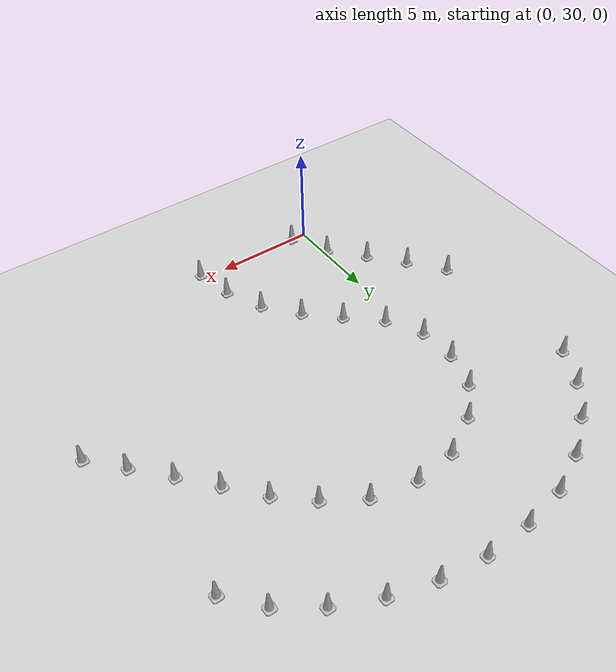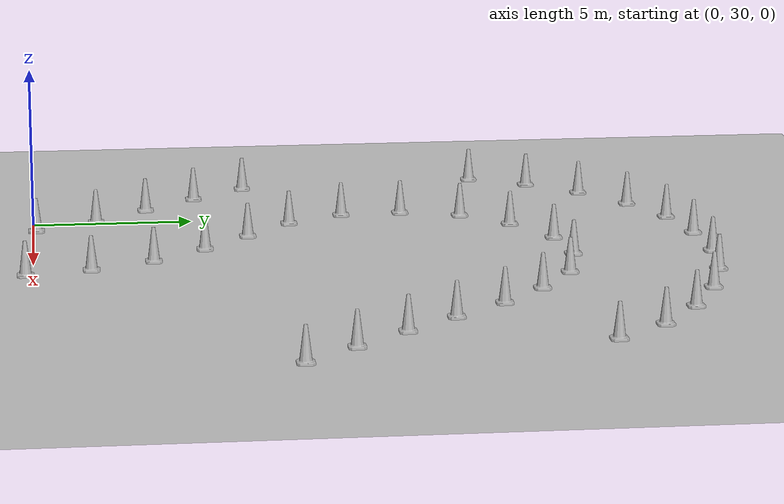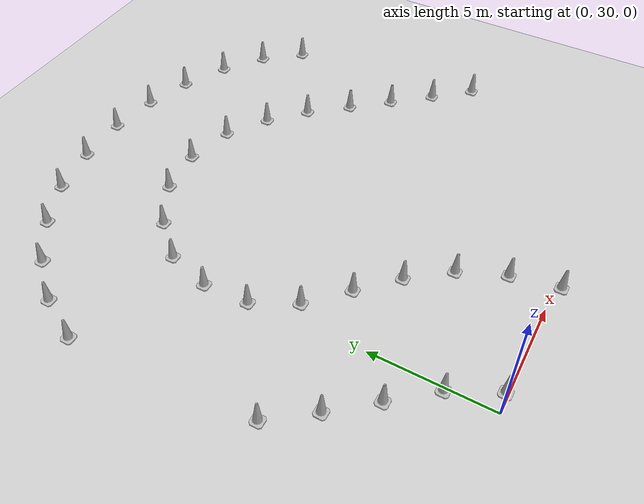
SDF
<sdf version="1.7">
 <world name="default">
  <model name="ground_plane">
   <static>1</static>
   <link name="link">
    <collision name="collision">
     <geometry><plane><normal>0 0 1</normal><size>125 125</size></plane></geometry>
     <surface>
      <contact><collide_bitmask>65535</collide_bitmask></contact>
      <friction><ode><mu>100</mu><mu2>50</mu2></ode></friction>
     </surface>
    </collision>
    <visual name="visual">
     <cast_shadows>0</cast_shadows>
     <geometry><plane><normal>0 0 1</normal><size>125 125</size></plane></geometry>
     <material>
      <script><uri>file://media/materials/scripts/gazebo.material</uri><name>Gazebo/Grey</name></script>
     </material>
    </visual>
   </link>
  </model>
  <model name="Construction Cone 0">
   <link name="link">
    <collision name="collision">
     <geometry>
      <mesh><scale>10 10 10</scale><uri>model://construction_cone/meshes/construction_cone.dae</uri></mesh>
     </geometry>
    </collision>
    <visual name="visual">
     <geometry>
      <mesh><scale>10 10 10</scale><uri>model://construction_cone/meshes/construction_cone.dae</uri></mesh>
     </geometry>
    </visual>
    <inertial>
     <inertia><ixx>1</ixx><ixy>0</ixy><ixz>0</ixz><iyy>1</iyy><iyz>0</iyz><izz>1</izz></inertia>
     <mass>1</mass>
    </inertial>
   </link>
   <pose>5.576248381191256 50.64985582765605 0 0 0 0</pose>
  </model>
  <model name="Construction Cone 1">
   <link name="link">
    <collision name="collision">
     <geometry>
      <mesh><scale>10 10 10</scale><uri>model://construction_cone/meshes/construction_cone.dae</uri></mesh>
     </geometry>
    </collision>
    <visual name="visual">
     <geometry>
      <mesh><scale>10 10 10</scale><uri>model://construction_cone/meshes/construction_cone.dae</uri></mesh>
     </geometry>
    </visual>
    <inertial>
     <inertia><ixx>1</ixx><ixy>0</ixy><ixz>0</ixz><iyy>1</iyy><iyz>0</iyz><izz>1</izz></inertia>
     <mass>1</mass>
    </inertial>
   </link>
   <pose>3.294748381191262 50.55535582765605 0 0 0 0</pose>
  </model>
  <model name="Construction Cone 2">
   <link name="link">
    <collision name="collision">
     <geometry>
      <mesh><scale>10 10 10</scale><uri>model://construction_cone/meshes/construction_cone.dae</uri></mesh>
     </geometry>
    </collision>
    <visual name="visual">
     <geometry>
      <mesh><scale>10 10 10</scale><uri>model://construction_cone/meshes/construction_cone.dae</uri></mesh>
     </geometry>
    </visual>
    <inertial>
     <inertia><ixx>1</ixx><ixy>0</ixy><ixz>0</ixz><iyy>1</iyy><iyz>0</iyz><izz>1</izz></inertia>
     <mass>1</mass>
    </inertial>
   </link>
   <pose>7.749748381191267 50.35285582765605 0 0 0 0</pose>
  </model>
  <model name="Construction Cone 3">
   <link name="link">
    <collision name="collision">
     <geometry>
      <mesh><scale>10 10 10</scale><uri>model://construction_cone/meshes/construction_cone.dae</uri></mesh>
     </geometry>
    </collision>
    <visual name="visual">
     <geometry>
      <mesh><scale>10 10 10</scale><uri>model://construction_cone/meshes/construction_cone.dae</uri></mesh>
     </geometry>
    </visual>
    <inertial>
     <inertia><ixx>1</ixx><ixy>0</ixy><ixz>0</ixz><iyy>1</iyy><iyz>0</iyz><izz>1</izz></inertia>
     <mass>1</mass>
    </inertial>
   </link>
   <pose>1.1347483811912582 50.15035582765605 0 0 0 0</pose>
  </model>
  <model name="Construction Cone 4">
   <link name="link">
    <collision name="collision">
     <geometry>
      <mesh><scale>10 10 10</scale><uri>model://construction_cone/meshes/construction_cone.dae</uri></mesh>
     </geometry>
    </collision>
    <visual name="visual">
     <geometry>
      <mesh><scale>10 10 10</scale><uri>model://construction_cone/meshes/construction_cone.dae</uri></mesh>
     </geometry>
    </visual>
    <inertial>
     <inertia><ixx>1</ixx><ixy>0</ixy><ixz>0</ixz><iyy>1</iyy><iyz>0</iyz><izz>1</izz></inertia>
     <mass>1</mass>
    </inertial>
   </link>
   <pose>9.815248381191267 49.73185582765605 0 0 0 0</pose>
  </model>
  <model name="Construction Cone 5">
   <link name="link">
    <collision name="collision">
     <geometry>
      <mesh><scale>10 10 10</scale><uri>model://construction_cone/meshes/construction_cone.dae</uri></mesh>
     </geometry>
    </collision>
    <visual name="visual">
     <geometry>
      <mesh><scale>10 10 10</scale><uri>model://construction_cone/meshes/construction_cone.dae</uri></mesh>
     </geometry>
    </visual>
    <inertial>
     <inertia><ixx>1</ixx><ixy>0</ixy><ixz>0</ixz><iyy>1</iyy><iyz>0</iyz><izz>1</izz></inertia>
     <mass>1</mass>
    </inertial>
   </link>
   <pose>-0.7687516188087429 49.24585582765605 0 0 0 0</pose>
  </model>
  <model name="Construction Cone 6">
   <link name="link">
    <collision name="collision">
     <geometry>
      <mesh><scale>10 10 10</scale><uri>model://construction_cone/meshes/construction_cone.dae</uri></mesh>
     </geometry>
    </collision>
    <visual name="visual">
     <geometry>
      <mesh><scale>10 10 10</scale><uri>model://construction_cone/meshes/construction_cone.dae</uri></mesh>
     </geometry>
    </visual>
    <inertial>
     <inertia><ixx>1</ixx><ixy>0</ixy><ixz>0</ixz><iyy>1</iyy><iyz>0</iyz><izz>1</izz></inertia>
     <mass>1</mass>
    </inertial>
   </link>
   <pose>11.809391238334115 48.771427256227476 0 0 0 0</pose>
  </model>
  <model name="Construction Cone 7">
   <link name="link">
    <collision name="collision">
     <geometry>
      <mesh><scale>10 10 10</scale><uri>model://construction_cone/meshes/construction_cone.dae</uri></mesh>
     </geometry>
    </collision>
    <visual name="visual">
     <geometry>
      <mesh><scale>10 10 10</scale><uri>model://construction_cone/meshes/construction_cone.dae</uri></mesh>
     </geometry>
    </visual>
    <inertial>
     <inertia><ixx>1</ixx><ixy>0</ixy><ixz>0</ixz><iyy>1</iyy><iyz>0</iyz><izz>1</izz></inertia>
     <mass>1</mass>
    </inertial>
   </link>
   <pose>-2.4967516188087373 47.94985582765605 0 0 0 0</pose>
  </model>
  <model name="Construction Cone 8">
   <link name="link">
    <collision name="collision">
     <geometry>
      <mesh><scale>10 10 10</scale><uri>model://construction_cone/meshes/construction_cone.dae</uri></mesh>
     </geometry>
    </collision>
    <visual name="visual">
     <geometry>
      <mesh><scale>10 10 10</scale><uri>model://construction_cone/meshes/construction_cone.dae</uri></mesh>
     </geometry>
    </visual>
    <inertial>
     <inertia><ixx>1</ixx><ixy>0</ixy><ixz>0</ixz><iyy>1</iyy><iyz>0</iyz><izz>1</izz></inertia>
     <mass>1</mass>
    </inertial>
   </link>
   <pose>13.55474838119126 47.51785582765605 0 0 0 0</pose>
  </model>
  <model name="Construction Cone 9">
   <link name="link">
    <collision name="collision">
     <geometry>
      <mesh><scale>10 10 10</scale><uri>model://construction_cone/meshes/construction_cone.dae</uri></mesh>
     </geometry>
    </collision>
    <visual name="visual">
     <geometry>
      <mesh><scale>10 10 10</scale><uri>model://construction_cone/meshes/construction_cone.dae</uri></mesh>
     </geometry>
    </visual>
    <inertial>
     <inertia><ixx>1</ixx><ixy>0</ixy><ixz>0</ixz><iyy>1</iyy><iyz>0</iyz><izz>1</izz></inertia>
     <mass>1</mass>
    </inertial>
   </link>
   <pose>-3.8467516188087387 46.41085582765605 0 0 0 0</pose>
  </model>
  <model name="Construction Cone 10">
   <link name="link">
    <collision name="collision">
     <geometry>
      <mesh><scale>10 10 10</scale><uri>model://construction_cone/meshes/construction_cone.dae</uri></mesh>
     </geometry>
    </collision>
    <visual name="visual">
     <geometry>
      <mesh><scale>10 10 10</scale><uri>model://construction_cone/meshes/construction_cone.dae</uri></mesh>
     </geometry>
    </visual>
    <inertial>
     <inertia><ixx>1</ixx><ixy>0</ixy><ixz>0</ixz><iyy>1</iyy><iyz>0</iyz><izz>1</izz></inertia>
     <mass>1</mass>
    </inertial>
   </link>
   <pose>5.49524838119126 46.35685582765605 0 0 0 0</pose>
  </model>
  <model name="Construction Cone 11">
   <link name="link">
    <collision name="collision">
     <geometry>
      <mesh><scale>10 10 10</scale><uri>model://construction_cone/meshes/construction_cone.dae</uri></mesh>
     </geometry>
    </collision>
    <visual name="visual">
     <geometry>
      <mesh><scale>10 10 10</scale><uri>model://construction_cone/meshes/construction_cone.dae</uri></mesh>
     </geometry>
    </visual>
    <inertial>
     <inertia><ixx>1</ixx><ixy>0</ixy><ixz>0</ixz><iyy>1</iyy><iyz>0</iyz><izz>1</izz></inertia>
     <mass>1</mass>
    </inertial>
   </link>
   <pose>3.42974838119126 46.10035582765605 0 0 0 0</pose>
  </model>
  <model name="Construction Cone 12">
   <link name="link">
    <collision name="collision">
     <geometry>
      <mesh><scale>10 10 10</scale><uri>model://construction_cone/meshes/construction_cone.dae</uri></mesh>
     </geometry>
    </collision>
    <visual name="visual">
     <geometry>
      <mesh><scale>10 10 10</scale><uri>model://construction_cone/meshes/construction_cone.dae</uri></mesh>
     </geometry>
    </visual>
    <inertial>
     <inertia><ixx>1</ixx><ixy>0</ixy><ixz>0</ixz><iyy>1</iyy><iyz>0</iyz><izz>1</izz></inertia>
     <mass>1</mass>
    </inertial>
   </link>
   <pose>7.62824838119127 45.87085582765605 0 0 0 0</pose>
  </model>
  <model name="Construction Cone 13">
   <link name="link">
    <collision name="collision">
     <geometry>
      <mesh><scale>10 10 10</scale><uri>model://construction_cone/meshes/construction_cone.dae</uri></mesh>
     </geometry>
    </collision>
    <visual name="visual">
     <geometry>
      <mesh><scale>10 10 10</scale><uri>model://construction_cone/meshes/construction_cone.dae</uri></mesh>
     </geometry>
    </visual>
    <inertial>
     <inertia><ixx>1</ixx><ixy>0</ixy><ixz>0</ixz><iyy>1</iyy><iyz>0</iyz><izz>1</izz></inertia>
     <mass>1</mass>
    </inertial>
   </link>
   <pose>14.88224838119126 45.94285582765605 0 0 0 0</pose>
  </model>
  <model name="Construction Cone 14">
   <link name="link">
    <collision name="collision">
     <geometry>
      <mesh><scale>10 10 10</scale><uri>model://construction_cone/meshes/construction_cone.dae</uri></mesh>
     </geometry>
    </collision>
    <visual name="visual">
     <geometry>
      <mesh><scale>10 10 10</scale><uri>model://construction_cone/meshes/construction_cone.dae</uri></mesh>
     </geometry>
    </visual>
    <inertial>
     <inertia><ixx>1</ixx><ixy>0</ixy><ixz>0</ixz><iyy>1</iyy><iyz>0</iyz><izz>1</izz></inertia>
     <mass>1</mass>
    </inertial>
   </link>
   <pose>1.5397483811912593 45.02035582765605 0 0 0 0</pose>
  </model>
  <model name="Construction Cone 15">
   <link name="link">
    <collision name="collision">
     <geometry>
      <mesh><scale>10 10 10</scale><uri>model://construction_cone/meshes/construction_cone.dae</uri></mesh>
     </geometry>
    </collision>
    <visual name="visual">
     <geometry>
      <mesh><scale>10 10 10</scale><uri>model://construction_cone/meshes/construction_cone.dae</uri></mesh>
     </geometry>
    </visual>
    <inertial>
     <inertia><ixx>1</ixx><ixy>0</ixy><ixz>0</ixz><iyy>1</iyy><iyz>0</iyz><izz>1</izz></inertia>
     <mass>1</mass>
    </inertial>
   </link>
   <pose>9.369748381191258 44.75035582765605 0 0 0 0</pose>
  </model>
  <model name="Construction Cone 16">
   <link name="link">
    <collision name="collision">
     <geometry>
      <mesh><scale>10 10 10</scale><uri>model://construction_cone/meshes/construction_cone.dae</uri></mesh>
     </geometry>
    </collision>
    <visual name="visual">
     <geometry>
      <mesh><scale>10 10 10</scale><uri>model://construction_cone/meshes/construction_cone.dae</uri></mesh>
     </geometry>
    </visual>
    <inertial>
     <inertia><ixx>1</ixx><ixy>0</ixy><ixz>0</ixz><iyy>1</iyy><iyz>0</iyz><izz>1</izz></inertia>
     <mass>1</mass>
    </inertial>
   </link>
   <pose>-4.8052516188087395 44.61535582765605 0 0 0 0</pose>
  </model>
  <model name="Construction Cone 18">
   <link name="link">
    <collision name="collision">
     <geometry>
      <mesh><scale>10 10 10</scale><uri>model://construction_cone/meshes/construction_cone.dae</uri></mesh>
     </geometry>
    </collision>
    <visual name="visual">
     <geometry>
      <mesh><scale>10 10 10</scale><uri>model://construction_cone/meshes/construction_cone.dae</uri></mesh>
     </geometry>
    </visual>
    <inertial>
     <inertia><ixx>1</ixx><ixy>0</ixy><ixz>0</ixz><iyy>1</iyy><iyz>0</iyz><izz>1</izz></inertia>
     <mass>1</mass>
    </inertial>
   </link>
   <pose>0.22349838119126275 43.60285582765605 0 0 0 0</pose>
  </model>
  <model name="Construction Cone 19">
   <link name="link">
    <collision name="collision">
     <geometry>
      <mesh><scale>10 10 10</scale><uri>model://construction_cone/meshes/construction_cone.dae</uri></mesh>
     </geometry>
    </collision>
    <visual name="visual">
     <geometry>
      <mesh><scale>10 10 10</scale><uri>model://construction_cone/meshes/construction_cone.dae</uri></mesh>
     </geometry>
    </visual>
    <inertial>
     <inertia><ixx>1</ixx><ixy>0</ixy><ixz>0</ixz><iyy>1</iyy><iyz>0</iyz><izz>1</izz></inertia>
     <mass>1</mass>
    </inertial>
   </link>
   <pose>10.854748381191257 43.40035582765605 0 0 0 0</pose>
  </model>
  <model name="Construction Cone 22">
   <link name="link">
    <collision name="collision">
     <geometry>
      <mesh><scale>10 10 10</scale><uri>model://construction_cone/meshes/construction_cone.dae</uri></mesh>
     </geometry>
    </collision>
    <visual name="visual">
     <geometry>
      <mesh><scale>10 10 10</scale><uri>model://construction_cone/meshes/construction_cone.dae</uri></mesh>
     </geometry>
    </visual>
    <inertial>
     <inertia><ixx>1</ixx><ixy>0</ixy><ixz>0</ixz><iyy>1</iyy><iyz>0</iyz><izz>1</izz></inertia>
     <mass>1</mass>
    </inertial>
   </link>
   <pose>12.191248381191258 41.82085582765605 0 0 0 0</pose>
  </model>
  <model name="Construction Cone 23">
   <link name="link">
    <collision name="collision">
     <geometry>
      <mesh><scale>10 10 10</scale><uri>model://construction_cone/meshes/construction_cone.dae</uri></mesh>
     </geometry>
    </collision>
    <visual name="visual">
     <geometry>
      <mesh><scale>10 10 10</scale><uri>model://construction_cone/meshes/construction_cone.dae</uri></mesh>
     </geometry>
    </visual>
    <inertial>
     <inertia><ixx>1</ixx><ixy>0</ixy><ixz>0</ixz><iyy>1</iyy><iyz>0</iyz><izz>1</izz></inertia>
     <mass>1</mass>
    </inertial>
   </link>
   <pose>-0.3367516188087336 41.73985582765605 0 0 0 0</pose>
  </model>
  <model name="Construction Cone 26">
   <link name="link">
    <collision name="collision">
     <geometry>
      <mesh><scale>10 10 10</scale><uri>model://construction_cone/meshes/construction_cone.dae</uri></mesh>
     </geometry>
    </collision>
    <visual name="visual">
     <geometry>
      <mesh><scale>10 10 10</scale><uri>model://construction_cone/meshes/construction_cone.dae</uri></mesh>
     </geometry>
    </visual>
    <inertial>
     <inertia><ixx>1</ixx><ixy>0</ixy><ixz>0</ixz><iyy>1</iyy><iyz>0</iyz><izz>1</izz></inertia>
     <mass>1</mass>
    </inertial>
   </link>
   <pose>13.514248381191265 40.28185582765605 0 0 0 0</pose>
  </model>
  <model name="Construction Cone 27">
   <link name="link">
    <collision name="collision">
     <geometry>
      <mesh><scale>10 10 10</scale><uri>model://construction_cone/meshes/construction_cone.dae</uri></mesh>
     </geometry>
    </collision>
    <visual name="visual">
     <geometry>
      <mesh><scale>10 10 10</scale><uri>model://construction_cone/meshes/construction_cone.dae</uri></mesh>
     </geometry>
    </visual>
    <inertial>
     <inertia><ixx>1</ixx><ixy>0</ixy><ixz>0</ixz><iyy>1</iyy><iyz>0</iyz><izz>1</izz></inertia>
     <mass>1</mass>
    </inertial>
   </link>
   <pose>-0.24900161880874094 39.82285582765605 0 0 0 0</pose>
  </model>
  <model name="Construction Cone 30">
   <link name="link">
    <collision name="collision">
     <geometry>
      <mesh><scale>10 10 10</scale><uri>model://construction_cone/meshes/construction_cone.dae</uri></mesh>
     </geometry>
    </collision>
    <visual name="visual">
     <geometry>
      <mesh><scale>10 10 10</scale><uri>model://construction_cone/meshes/construction_cone.dae</uri></mesh>
     </geometry>
    </visual>
    <inertial>
     <inertia><ixx>1</ixx><ixy>0</ixy><ixz>0</ixz><iyy>1</iyy><iyz>0</iyz><izz>1</izz></inertia>
     <mass>1</mass>
    </inertial>
   </link>
   <pose>14.89124838119126 38.71585582765605 0 0 0 0</pose>
  </model>
  <model name="Construction Cone 31">
   <link name="link">
    <collision name="collision">
     <geometry>
      <mesh><scale>10 10 10</scale><uri>model://construction_cone/meshes/construction_cone.dae</uri></mesh>
     </geometry>
    </collision>
    <visual name="visual">
     <geometry>
      <mesh><scale>10 10 10</scale><uri>model://construction_cone/meshes/construction_cone.dae</uri></mesh>
     </geometry>
    </visual>
    <inertial>
     <inertia><ixx>1</ixx><ixy>0</ixy><ixz>0</ixz><iyy>1</iyy><iyz>0</iyz><izz>1</izz></inertia>
     <mass>1</mass>
    </inertial>
   </link>
   <pose>0.6959983811912593 38.06785582765605 0 0 0 0</pose>
  </model>
  <model name="Construction Cone 33">
   <link name="link">
    <collision name="collision">
     <geometry>
      <mesh><scale>10 10 10</scale><uri>model://construction_cone/meshes/construction_cone.dae</uri></mesh>
     </geometry>
    </collision>
    <visual name="visual">
     <geometry>
      <mesh><scale>10 10 10</scale><uri>model://construction_cone/meshes/construction_cone.dae</uri></mesh>
     </geometry>
    </visual>
    <inertial>
     <inertia><ixx>1</ixx><ixy>0</ixy><ixz>0</ixz><iyy>1</iyy><iyz>0</iyz><izz>1</izz></inertia>
     <mass>1</mass>
    </inertial>
   </link>
   <pose>16.254748381191263 37.19035582765605 0 0 0 0</pose>
  </model>
  <model name="Construction Cone 34">
   <link name="link">
    <collision name="collision">
     <geometry>
      <mesh><scale>10 10 10</scale><uri>model://construction_cone/meshes/construction_cone.dae</uri></mesh>
     </geometry>
    </collision>
    <visual name="visual">
     <geometry>
      <mesh><scale>10 10 10</scale><uri>model://construction_cone/meshes/construction_cone.dae</uri></mesh>
     </geometry>
    </visual>
    <inertial>
     <inertia><ixx>1</ixx><ixy>0</ixy><ixz>0</ixz><iyy>1</iyy><iyz>0</iyz><izz>1</izz></inertia>
     <mass>1</mass>
    </inertial>
   </link>
   <pose>-4.26525161880874 36.92035582765605 0 0 0 0</pose>
  </model>
  <model name="Construction Cone 35">
   <link name="link">
    <collision name="collision">
     <geometry>
      <mesh><scale>10 10 10</scale><uri>model://construction_cone/meshes/construction_cone.dae</uri></mesh>
     </geometry>
    </collision>
    <visual name="visual">
     <geometry>
      <mesh><scale>10 10 10</scale><uri>model://construction_cone/meshes/construction_cone.dae</uri></mesh>
     </geometry>
    </visual>
    <inertial>
     <inertia><ixx>1</ixx><ixy>0</ixy><ixz>0</ixz><iyy>1</iyy><iyz>0</iyz><izz>1</izz></inertia>
     <mass>1</mass>
    </inertial>
   </link>
   <pose>2.2147483811912636 36.65035582765605 0 0 0 0</pose>
  </model>
  <model name="Construction Cone 38">
   <link name="link">
    <collision name="collision">
     <geometry>
      <mesh><scale>10 10 10</scale><uri>model://construction_cone/meshes/construction_cone.dae</uri></mesh>
     </geometry>
    </collision>
    <visual name="visual">
     <geometry>
      <mesh><scale>10 10 10</scale><uri>model://construction_cone/meshes/construction_cone.dae</uri></mesh>
     </geometry>
    </visual>
    <inertial>
     <inertia><ixx>1</ixx><ixy>0</ixy><ixz>0</ixz><iyy>1</iyy><iyz>0</iyz><izz>1</izz></inertia>
     <mass>1</mass>
    </inertial>
   </link>
   <pose>-2.9490016188087367 35.23285582765605 0 0 0 0</pose>
  </model>
  <model name="Construction Cone 39">
   <link name="link">
    <collision name="collision">
     <geometry>
      <mesh><scale>10 10 10</scale><uri>model://construction_cone/meshes/construction_cone.dae</uri></mesh>
     </geometry>
    </collision>
    <visual name="visual">
     <geometry>
      <mesh><scale>10 10 10</scale><uri>model://construction_cone/meshes/construction_cone.dae</uri></mesh>
     </geometry>
    </visual>
    <inertial>
     <inertia><ixx>1</ixx><ixy>0</ixy><ixz>0</ixz><iyy>1</iyy><iyz>0</iyz><izz>1</izz></inertia>
     <mass>1</mass>
    </inertial>
   </link>
   <pose>3.699748381191263 35.23285582765605 0 0 0 0</pose>
  </model>
  <model name="Construction Cone 42">
   <link name="link">
    <collision name="collision">
     <geometry>
      <mesh><scale>10 10 10</scale><uri>model://construction_cone/meshes/construction_cone.dae</uri></mesh>
     </geometry>
    </collision>
    <visual name="visual">
     <geometry>
      <mesh><scale>10 10 10</scale><uri>model://construction_cone/meshes/construction_cone.dae</uri></mesh>
     </geometry>
    </visual>
    <inertial>
     <inertia><ixx>1</ixx><ixy>0</ixy><ixz>0</ixz><iyy>1</iyy><iyz>0</iyz><izz>1</izz></inertia>
     <mass>1</mass>
    </inertial>
   </link>
   <pose>-1.5652516188087375 33.61285582765605 0 0 0 0</pose>
  </model>
  <model name="Construction Cone 43">
   <link name="link">
    <collision name="collision">
     <geometry>
      <mesh><scale>10 10 10</scale><uri>model://construction_cone/meshes/construction_cone.dae</uri></mesh>
     </geometry>
    </collision>
    <visual name="visual">
     <geometry>
      <mesh><scale>10 10 10</scale><uri>model://construction_cone/meshes/construction_cone.dae</uri></mesh>
     </geometry>
    </visual>
    <inertial>
     <inertia><ixx>1</ixx><ixy>0</ixy><ixz>0</ixz><iyy>1</iyy><iyz>0</iyz><izz>1</izz></inertia>
     <mass>1</mass>
    </inertial>
   </link>
   <pose>5.01599838119126 33.61285582765605 0 0 0 0</pose>
  </model>
  <model name="Construction Cone 46">
   <link name="link">
    <collision name="collision">
     <geometry>
      <mesh><scale>10 10 10</scale><uri>model://construction_cone/meshes/construction_cone.dae</uri></mesh>
     </geometry>
    </collision>
    <visual name="visual">
     <geometry>
      <mesh><scale>10 10 10</scale><uri>model://construction_cone/meshes/construction_cone.dae</uri></mesh>
     </geometry>
    </visual>
    <inertial>
     <inertia><ixx>1</ixx><ixy>0</ixy><ixz>0</ixz><iyy>1</iyy><iyz>0</iyz><izz>1</izz></inertia>
     <mass>1</mass>
    </inertial>
   </link>
   <pose>-0.14775161880874066 31.99285582765605 0 0 0 0</pose>
  </model>
  <model name="Construction Cone 47">
   <link name="link">
    <collision name="collision">
     <geometry>
      <mesh><scale>10 10 10</scale><uri>model://construction_cone/meshes/construction_cone.dae</uri></mesh>
     </geometry>
    </collision>
    <visual name="visual">
     <geometry>
      <mesh><scale>10 10 10</scale><uri>model://construction_cone/meshes/construction_cone.dae</uri></mesh>
     </geometry>
    </visual>
    <inertial>
     <inertia><ixx>1</ixx><ixy>0</ixy><ixz>0</ixz><iyy>1</iyy><iyz>0</iyz><izz>1</izz></inertia>
     <mass>1</mass>
    </inertial>
   </link>
   <pose>5.859748381191267 31.722855827656048 0 0 0 0</pose>
  </model>
  <model name="Construction Cone 50">
   <link name="link">
    <collision name="collision">
     <geometry>
      <mesh><scale>10 10 10</scale><uri>model://construction_cone/meshes/construction_cone.dae</uri></mesh>
     </geometry>
    </collision>
    <visual name="visual">
     <geometry>
      <mesh><scale>10 10 10</scale><uri>model://construction_cone/meshes/construction_cone.dae</uri></mesh>
     </geometry>
    </visual>
    <inertial>
     <inertia><ixx>1</ixx><ixy>0</ixy><ixz>0</ixz><iyy>1</iyy><iyz>0</iyz><izz>1</izz></inertia>
     <mass>1</mass>
    </inertial>
   </link>
   <pose>0.8309983811912645 30.10285582765605 0 0 0 0</pose>
  </model>
  <model name="Construction Cone 51">
   <link name="link">
    <collision name="collision">
     <geometry>
      <mesh><scale>10 10 10</scale><uri>model://construction_cone/meshes/construction_cone.dae</uri></mesh>
     </geometry>
    </collision>
    <visual name="visual">
     <geometry>
      <mesh><scale>10 10 10</scale><uri>model://construction_cone/meshes/construction_cone.dae</uri></mesh>
     </geometry>
    </visual>
    <inertial>
     <inertia><ixx>1</ixx><ixy>0</ixy><ixz>0</ixz><iyy>1</iyy><iyz>0</iyz><izz>1</izz></inertia>
     <mass>1</mass>
    </inertial>
   </link>
   <pose>6.264748381191268 29.765355827656048 0 0 0 0</pose>
  </model>
 </world>
</sdf>
